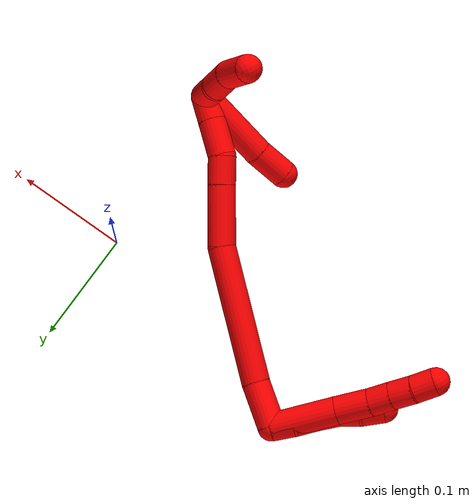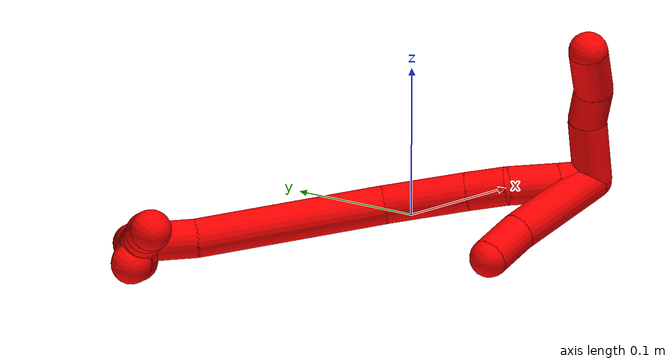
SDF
<sdf version="1.7">
 <world name="default">
  <model name="2">
   <static>0</static>
   <link name="2">
    <collision name="collision-cylinder-e_1_2_8">
     <pose>0.010659 0.009315 0.026101 -0.342784 0.367171 -0.064255</pose>
     <geometry><cylinder><radius>0.0125</radius><length>0.059385</length></cylinder></geometry>
     <surface>
      <friction><ode><mu>1.16</mu><mu2>1.16</mu2><slip1>0</slip1><slip2>0</slip2></ode></friction>
      <contact><ode><kp>1e+06</kp><kd>1</kd><max_vel>0</max_vel><min_depth>0.001</min_depth></ode></contact>
     </surface>
    </collision>
    <visual name="visual-cylinder-e_1_2_8">
     <pose>0.010659 0.009315 0.026101 -0.342784 0.367171 -0.064255</pose>
     <geometry><cylinder><radius>0.0125</radius><length>0.059385</length></cylinder></geometry>
     <material><ambient>1 0 0 1</ambient></material>
    </visual>
    <collision name="collision-cylinder-e_2_8_9">
     <pose>0.027607 0.0237 0.065172 -0.372684 0.424201 -0.081151</pose>
     <geometry><cylinder><radius>0.0125</radius><length>0.03056</length></cylinder></geometry>
     <surface>
      <friction><ode><mu>1.16</mu><mu2>1.16</mu2><slip1>0</slip1><slip2>0</slip2></ode></friction>
      <contact><ode><kp>1e+06</kp><kd>1</kd><max_vel>0</max_vel><min_depth>0.001</min_depth></ode></contact>
     </surface>
    </collision>
    <visual name="visual-cylinder-e_2_8_9">
     <pose>0.027607 0.0237 0.065172 -0.372684 0.424201 -0.081151</pose>
     <geometry><cylinder><radius>0.0125</radius><length>0.03056</length></cylinder></geometry>
     <material><ambient>1 0 0 1</ambient></material>
    </visual>
    <collision name="collision-cylinder-e_3_9_10">
     <pose>0.038675 0.03153 0.086496 -0.319046 0.49755 -0.081699</pose>
     <geometry><cylinder><radius>0.0125</radius><length>0.020024</length></cylinder></geometry>
     <surface>
      <friction><ode><mu>1.16</mu><mu2>1.16</mu2><slip1>0</slip1><slip2>0</slip2></ode></friction>
      <contact><ode><kp>1e+06</kp><kd>1</kd><max_vel>0</max_vel><min_depth>0.001</min_depth></ode></contact>
     </surface>
    </collision>
    <visual name="visual-cylinder-e_3_9_10">
     <pose>0.038675 0.03153 0.086496 -0.319046 0.49755 -0.081699</pose>
     <geometry><cylinder><radius>0.0125</radius><length>0.020024</length></cylinder></geometry>
     <material><ambient>1 0 0 1</ambient></material>
    </visual>
    <collision name="collision-cylinder-e_4_10_11">
     <pose>0.048406 0.037258 0.103019 -0.348472 0.517931 -0.093193</pose>
     <geometry><cylinder><radius>0.0125</radius><length>0.020007</length></cylinder></geometry>
     <surface>
      <friction><ode><mu>1.16</mu><mu2>1.16</mu2><slip1>0</slip1><slip2>0</slip2></ode></friction>
      <contact><ode><kp>1e+06</kp><kd>1</kd><max_vel>0</max_vel><min_depth>0.001</min_depth></ode></contact>
     </surface>
    </collision>
    <visual name="visual-cylinder-e_4_10_11">
     <pose>0.048406 0.037258 0.103019 -0.348472 0.517931 -0.093193</pose>
     <geometry><cylinder><radius>0.0125</radius><length>0.020007</length></cylinder></geometry>
     <material><ambient>1 0 0 1</ambient></material>
    </visual>
    <collision name="collision-cylinder-e_5_11_6">
     <pose>0.057647 0.042578 0.119924 -0.263081 0.442707 -0.05953</pose>
     <geometry><cylinder><radius>0.0125</radius><length>0.020024</length></cylinder></geometry>
     <surface>
      <friction><ode><mu>1.16</mu><mu2>1.16</mu2><slip1>0</slip1><slip2>0</slip2></ode></friction>
      <contact><ode><kp>1e+06</kp><kd>1</kd><max_vel>0</max_vel><min_depth>0.001</min_depth></ode></contact>
     </surface>
    </collision>
    <visual name="visual-cylinder-e_5_11_6">
     <pose>0.057647 0.042578 0.119924 -0.263081 0.442707 -0.05953</pose>
     <geometry><cylinder><radius>0.0125</radius><length>0.020024</length></cylinder></geometry>
     <material><ambient>1 0 0 1</ambient></material>
    </visual>
    <collision name="collision-cylinder-e_1_2_12">
     <pose>0.003216 0.003638 0.008742 -0.394374 0.327457 -0.065987</pose>
     <geometry><cylinder><radius>0.0125</radius><length>0.02</length></cylinder></geometry>
     <surface>
      <friction><ode><mu>1.16</mu><mu2>1.16</mu2><slip1>0</slip1><slip2>0</slip2></ode></friction>
      <contact><ode><kp>1e+06</kp><kd>1</kd><max_vel>0</max_vel><min_depth>0.001</min_depth></ode></contact>
     </surface>
    </collision>
    <visual name="visual-cylinder-e_1_2_12">
     <pose>0.003216 0.003638 0.008742 -0.394374 0.327457 -0.065987</pose>
     <geometry><cylinder><radius>0.0125</radius><length>0.02</length></cylinder></geometry>
     <material><ambient>1 0 0 1</ambient></material>
    </visual>
    <collision name="collision-cylinder-e_2_12_13">
     <pose>0.007141 0.009999 0.02708 -0.276512 0.070871 -0.009865</pose>
     <geometry><cylinder><radius>0.0125</radius><length>0.02</length></cylinder></geometry>
     <surface>
      <friction><ode><mu>1.16</mu><mu2>1.16</mu2><slip1>0</slip1><slip2>0</slip2></ode></friction>
      <contact><ode><kp>1e+06</kp><kd>1</kd><max_vel>0</max_vel><min_depth>0.001</min_depth></ode></contact>
     </surface>
    </collision>
    <visual name="visual-cylinder-e_2_12_13">
     <pose>0.007141 0.009999 0.02708 -0.276512 0.070871 -0.009865</pose>
     <geometry><cylinder><radius>0.0125</radius><length>0.02</length></cylinder></geometry>
     <material><ambient>1 0 0 1</ambient></material>
    </visual>
    <collision name="collision-cylinder-e_3_13_14">
     <pose>0.009366 0.016068 0.045976 -0.345259 0.15233 -0.026611</pose>
     <geometry><cylinder><radius>0.0125</radius><length>0.02</length></cylinder></geometry>
     <surface>
      <friction><ode><mu>1.16</mu><mu2>1.16</mu2><slip1>0</slip1><slip2>0</slip2></ode></friction>
      <contact><ode><kp>1e+06</kp><kd>1</kd><max_vel>0</max_vel><min_depth>0.001</min_depth></ode></contact>
     </surface>
    </collision>
    <visual name="visual-cylinder-e_3_13_14">
     <pose>0.009366 0.016068 0.045976 -0.345259 0.15233 -0.026611</pose>
     <geometry><cylinder><radius>0.0125</radius><length>0.02</length></cylinder></geometry>
     <material><ambient>1 0 0 1</ambient></material>
    </visual>
    <collision name="collision-cylinder-e_4_14_15">
     <pose>0.014591 0.024729 0.062893 -0.609372 0.379737 -0.120728</pose>
     <geometry><cylinder><radius>0.0125</radius><length>0.02</length></cylinder></geometry>
     <surface>
      <friction><ode><mu>1.16</mu><mu2>1.16</mu2><slip1>0</slip1><slip2>0</slip2></ode></friction>
      <contact><ode><kp>1e+06</kp><kd>1</kd><max_vel>0</max_vel><min_depth>0.001</min_depth></ode></contact>
     </surface>
    </collision>
    <visual name="visual-cylinder-e_4_14_15">
     <pose>0.014591 0.024729 0.062893 -0.609372 0.379737 -0.120728</pose>
     <geometry><cylinder><radius>0.0125</radius><length>0.02</length></cylinder></geometry>
     <material><ambient>1 0 0 1</ambient></material>
    </visual>
    <collision name="collision-cylinder-e_5_15_5">
     <pose>0.021 0.034038 0.07927 -0.427718 0.273723 -0.059803</pose>
     <geometry><cylinder><radius>0.0125</radius><length>0.02</length></cylinder></geometry>
     <surface>
      <friction><ode><mu>1.16</mu><mu2>1.16</mu2><slip1>0</slip1><slip2>0</slip2></ode></friction>
      <contact><ode><kp>1e+06</kp><kd>1</kd><max_vel>0</max_vel><min_depth>0.001</min_depth></ode></contact>
     </surface>
    </collision>
    <visual name="visual-cylinder-e_5_15_5">
     <pose>0.021 0.034038 0.07927 -0.427718 0.273723 -0.059803</pose>
     <geometry><cylinder><radius>0.0125</radius><length>0.02</length></cylinder></geometry>
     <material><ambient>1 0 0 1</ambient></material>
    </visual>
    <collision name="collision-cylinder-e_1_2_16">
     <pose>0.001582 -0.020021 0.003889 1.37895 0.077402 0.063825</pose>
     <geometry><cylinder><radius>0.0125</radius><length>0.040913</length></cylinder></geometry>
     <surface>
      <friction><ode><mu>1.16</mu><mu2>1.16</mu2><slip1>0</slip1><slip2>0</slip2></ode></friction>
      <contact><ode><kp>1e+06</kp><kd>1</kd><max_vel>0</max_vel><min_depth>0.001</min_depth></ode></contact>
     </surface>
    </collision>
    <visual name="visual-cylinder-e_1_2_16">
     <pose>0.001582 -0.020021 0.003889 1.37895 0.077402 0.063825</pose>
     <geometry><cylinder><radius>0.0125</radius><length>0.040913</length></cylinder></geometry>
     <material><ambient>1 0 0 1</ambient></material>
    </visual>
    <collision name="collision-cylinder-e_2_16_17">
     <pose>0.016634 -0.097999 0.02358 1.30461 0.220591 0.168783</pose>
     <geometry><cylinder><radius>0.0125</radius><length>0.123129</length></cylinder></geometry>
     <surface>
      <friction><ode><mu>1.16</mu><mu2>1.16</mu2><slip1>0</slip1><slip2>0</slip2></ode></friction>
      <contact><ode><kp>1e+06</kp><kd>1</kd><max_vel>0</max_vel><min_depth>0.001</min_depth></ode></contact>
     </surface>
    </collision>
    <visual name="visual-cylinder-e_2_16_17">
     <pose>0.016634 -0.097999 0.02358 1.30461 0.220591 0.168783</pose>
     <geometry><cylinder><radius>0.0125</radius><length>0.123129</length></cylinder></geometry>
     <material><ambient>1 0 0 1</ambient></material>
    </visual>
    <collision name="collision-cylinder-e_3_17_18">
     <pose>0.037847 -0.178528 0.052016 1.06056 0.290812 0.171293</pose>
     <geometry><cylinder><radius>0.0125</radius><length>0.054001</length></cylinder></geometry>
     <surface>
      <friction><ode><mu>1.16</mu><mu2>1.16</mu2><slip1>0</slip1><slip2>0</slip2></ode></friction>
      <contact><ode><kp>1e+06</kp><kd>1</kd><max_vel>0</max_vel><min_depth>0.001</min_depth></ode></contact>
     </surface>
    </collision>
    <visual name="visual-cylinder-e_3_17_18">
     <pose>0.037847 -0.178528 0.052016 1.06056 0.290812 0.171293</pose>
     <geometry><cylinder><radius>0.0125</radius><length>0.054001</length></cylinder></geometry>
     <material><ambient>1 0 0 1</ambient></material>
    </visual>
    <collision name="collision-cylinder-e_4_18_19">
     <pose>0.049105 -0.211602 0.070886 1.03481 0.280281 0.160222</pose>
     <geometry><cylinder><radius>0.0125</radius><length>0.025421</length></cylinder></geometry>
     <surface>
      <friction><ode><mu>1.16</mu><mu2>1.16</mu2><slip1>0</slip1><slip2>0</slip2></ode></friction>
      <contact><ode><kp>1e+06</kp><kd>1</kd><max_vel>0</max_vel><min_depth>0.001</min_depth></ode></contact>
     </surface>
    </collision>
    <visual name="visual-cylinder-e_4_18_19">
     <pose>0.049105 -0.211602 0.070886 1.03481 0.280281 0.160222</pose>
     <geometry><cylinder><radius>0.0125</radius><length>0.025421</length></cylinder></geometry>
     <material><ambient>1 0 0 1</ambient></material>
    </visual>
    <collision name="collision-cylinder-e_5_19_20">
     <pose>0.054301 -0.238027 0.081371 1.31014 0.101605 0.078085</pose>
     <geometry><cylinder><radius>0.0125</radius><length>0.033131</length></cylinder></geometry>
     <surface>
      <friction><ode><mu>1.16</mu><mu2>1.16</mu2><slip1>0</slip1><slip2>0</slip2></ode></friction>
      <contact><ode><kp>1e+06</kp><kd>1</kd><max_vel>0</max_vel><min_depth>0.001</min_depth></ode></contact>
     </surface>
    </collision>
    <visual name="visual-cylinder-e_5_19_20">
     <pose>0.054301 -0.238027 0.081371 1.31014 0.101605 0.078085</pose>
     <geometry><cylinder><radius>0.0125</radius><length>0.033131</length></cylinder></geometry>
     <material><ambient>1 0 0 1</ambient></material>
    </visual>
    <collision name="collision-cylinder-e_6_20_1">
     <pose>0.057364 -0.265211 0.088489 1.32119 0.118405 0.092051</pose>
     <geometry><cylinder><radius>0.0125</radius><length>0.023405</length></cylinder></geometry>
     <surface>
      <friction><ode><mu>1.16</mu><mu2>1.16</mu2><slip1>0</slip1><slip2>0</slip2></ode></friction>
      <contact><ode><kp>1e+06</kp><kd>1</kd><max_vel>0</max_vel><min_depth>0.001</min_depth></ode></contact>
     </surface>
    </collision>
    <visual name="visual-cylinder-e_6_20_1">
     <pose>0.057364 -0.265211 0.088489 1.32119 0.118405 0.092051</pose>
     <geometry><cylinder><radius>0.0125</radius><length>0.023405</length></cylinder></geometry>
     <material><ambient>1 0 0 1</ambient></material>
    </visual>
    <collision name="collision-cylinder-e_1_1_21">
     <pose>0.079316 -0.271607 0.091599 -1.52154 1.33832 -1.29066</pose>
     <geometry><cylinder><radius>0.0125</radius><length>0.042277</length></cylinder></geometry>
     <surface>
      <friction><ode><mu>1.16</mu><mu2>1.16</mu2><slip1>0</slip1><slip2>0</slip2></ode></friction>
      <contact><ode><kp>1e+06</kp><kd>1</kd><max_vel>0</max_vel><min_depth>0.001</min_depth></ode></contact>
     </surface>
    </collision>
    <visual name="visual-cylinder-e_1_1_21">
     <pose>0.079316 -0.271607 0.091599 -1.52154 1.33832 -1.29066</pose>
     <geometry><cylinder><radius>0.0125</radius><length>0.042277</length></cylinder></geometry>
     <material><ambient>1 0 0 1</ambient></material>
    </visual>
    <collision name="collision-cylinder-e_2_21_22">
     <pose>0.111723 -0.265202 0.095966 -0.35746 1.21452 -0.249752</pose>
     <geometry><cylinder><radius>0.0125</radius><length>0.025261</length></cylinder></geometry>
     <surface>
      <friction><ode><mu>1.16</mu><mu2>1.16</mu2><slip1>0</slip1><slip2>0</slip2></ode></friction>
      <contact><ode><kp>1e+06</kp><kd>1</kd><max_vel>0</max_vel><min_depth>0.001</min_depth></ode></contact>
     </surface>
    </collision>
    <visual name="visual-cylinder-e_2_21_22">
     <pose>0.111723 -0.265202 0.095966 -0.35746 1.21452 -0.249752</pose>
     <geometry><cylinder><radius>0.0125</radius><length>0.025261</length></cylinder></geometry>
     <material><ambient>1 0 0 1</ambient></material>
    </visual>
    <collision name="collision-cylinder-e_3_22_4">
     <pose>0.138001 -0.257481 0.104184 -0.985966 1.09669 -0.634164</pose>
     <geometry><cylinder><radius>0.0125</radius><length>0.032462</length></cylinder></geometry>
     <surface>
      <friction><ode><mu>1.16</mu><mu2>1.16</mu2><slip1>0</slip1><slip2>0</slip2></ode></friction>
      <contact><ode><kp>1e+06</kp><kd>1</kd><max_vel>0</max_vel><min_depth>0.001</min_depth></ode></contact>
     </surface>
    </collision>
    <visual name="visual-cylinder-e_3_22_4">
     <pose>0.138001 -0.257481 0.104184 -0.985966 1.09669 -0.634164</pose>
     <geometry><cylinder><radius>0.0125</radius><length>0.032462</length></cylinder></geometry>
     <material><ambient>1 0 0 1</ambient></material>
    </visual>
    <collision name="collision-cylinder-e_1_1_23">
     <pose>0.046997 -0.245317 0.101847 -1.24608 -0.343272 0.24782</pose>
     <geometry><cylinder><radius>0.0125</radius><length>0.069816</length></cylinder></geometry>
     <surface>
      <friction><ode><mu>1.16</mu><mu2>1.16</mu2><slip1>0</slip1><slip2>0</slip2></ode></friction>
      <contact><ode><kp>1e+06</kp><kd>1</kd><max_vel>0</max_vel><min_depth>0.001</min_depth></ode></contact>
     </surface>
    </collision>
    <visual name="visual-cylinder-e_1_1_23">
     <pose>0.046997 -0.245317 0.101847 -1.24608 -0.343272 0.24782</pose>
     <geometry><cylinder><radius>0.0125</radius><length>0.069816</length></cylinder></geometry>
     <material><ambient>1 0 0 1</ambient></material>
    </visual>
    <collision name="collision-cylinder-e_2_23_3">
     <pose>0.029977 -0.201474 0.118574 -1.11375 -0.356772 0.223578</pose>
     <geometry><cylinder><radius>0.0125</radius><length>0.030184</length></cylinder></geometry>
     <surface>
      <friction><ode><mu>1.16</mu><mu2>1.16</mu2><slip1>0</slip1><slip2>0</slip2></ode></friction>
      <contact><ode><kp>1e+06</kp><kd>1</kd><max_vel>0</max_vel><min_depth>0.001</min_depth></ode></contact>
     </surface>
    </collision>
    <visual name="visual-cylinder-e_2_23_3">
     <pose>0.029977 -0.201474 0.118574 -1.11375 -0.356772 0.223578</pose>
     <geometry><cylinder><radius>0.0125</radius><length>0.030184</length></cylinder></geometry>
     <material><ambient>1 0 0 1</ambient></material>
    </visual>
    <collision name="collision-sphere-3">
     <pose>0.024707 -0.188784 0.124815 0 -0 0</pose>
     <geometry><sphere><radius>0.0125</radius></sphere></geometry>
     <surface>
      <friction><ode><mu>1.16</mu><mu2>1.16</mu2><slip1>0</slip1><slip2>0</slip2></ode></friction>
      <contact><ode><kp>1e+06</kp><kd>1</kd><max_vel>0</max_vel><min_depth>0.001</min_depth></ode></contact>
     </surface>
    </collision>
    <visual name="visual-sphere-3">
     <pose>0.024707 -0.188784 0.124815 0 -0 0</pose>
     <geometry><sphere><radius>0.0125</radius></sphere></geometry>
     <material><ambient>1 0 0 1</ambient></material>
    </visual>
    <collision name="collision-sphere-23">
     <pose>0.035248 -0.214164 0.112334 0 -0 0</pose>
     <geometry><sphere><radius>0.0125</radius></sphere></geometry>
     <surface>
      <friction><ode><mu>1.16</mu><mu2>1.16</mu2><slip1>0</slip1><slip2>0</slip2></ode></friction>
      <contact><ode><kp>1e+06</kp><kd>1</kd><max_vel>0</max_vel><min_depth>0.001</min_depth></ode></contact>
     </surface>
    </collision>
    <visual name="visual-sphere-23">
     <pose>0.035248 -0.214164 0.112334 0 -0 0</pose>
     <geometry><sphere><radius>0.0125</radius></sphere></geometry>
     <material><ambient>1 0 0 1</ambient></material>
    </visual>
    <collision name="collision-sphere-4">
     <pose>0.152442 -0.251303 0.108275 0 -0 0</pose>
     <geometry><sphere><radius>0.0125</radius></sphere></geometry>
     <surface>
      <friction><ode><mu>1.16</mu><mu2>1.16</mu2><slip1>0</slip1><slip2>0</slip2></ode></friction>
      <contact><ode><kp>1e+06</kp><kd>1</kd><max_vel>0</max_vel><min_depth>0.001</min_depth></ode></contact>
     </surface>
    </collision>
    <visual name="visual-sphere-4">
     <pose>0.152442 -0.251303 0.108275 0 -0 0</pose>
     <geometry><sphere><radius>0.0125</radius></sphere></geometry>
     <material><ambient>1 0 0 1</ambient></material>
    </visual>
    <collision name="collision-sphere-22">
     <pose>0.123561 -0.26366 0.100093 0 -0 0</pose>
     <geometry><sphere><radius>0.0125</radius></sphere></geometry>
     <surface>
      <friction><ode><mu>1.16</mu><mu2>1.16</mu2><slip1>0</slip1><slip2>0</slip2></ode></friction>
      <contact><ode><kp>1e+06</kp><kd>1</kd><max_vel>0</max_vel><min_depth>0.001</min_depth></ode></contact>
     </surface>
    </collision>
    <visual name="visual-sphere-22">
     <pose>0.123561 -0.26366 0.100093 0 -0 0</pose>
     <geometry><sphere><radius>0.0125</radius></sphere></geometry>
     <material><ambient>1 0 0 1</ambient></material>
    </visual>
    <collision name="collision-sphere-21">
     <pose>0.099886 -0.266743 0.091839 0 -0 0</pose>
     <geometry><sphere><radius>0.0125</radius></sphere></geometry>
     <surface>
      <friction><ode><mu>1.16</mu><mu2>1.16</mu2><slip1>0</slip1><slip2>0</slip2></ode></friction>
      <contact><ode><kp>1e+06</kp><kd>1</kd><max_vel>0</max_vel><min_depth>0.001</min_depth></ode></contact>
     </surface>
    </collision>
    <visual name="visual-sphere-21">
     <pose>0.099886 -0.266743 0.091839 0 -0 0</pose>
     <geometry><sphere><radius>0.0125</radius></sphere></geometry>
     <material><ambient>1 0 0 1</ambient></material>
    </visual>
    <collision name="collision-sphere-1">
     <pose>0.058746 -0.276471 0.091359 0 -0 0</pose>
     <geometry><sphere><radius>0.0125</radius></sphere></geometry>
     <surface>
      <friction><ode><mu>1.16</mu><mu2>1.16</mu2><slip1>0</slip1><slip2>0</slip2></ode></friction>
      <contact><ode><kp>1e+06</kp><kd>1</kd><max_vel>0</max_vel><min_depth>0.001</min_depth></ode></contact>
     </surface>
    </collision>
    <visual name="visual-sphere-1">
     <pose>0.058746 -0.276471 0.091359 0 -0 0</pose>
     <geometry><sphere><radius>0.0125</radius></sphere></geometry>
     <material><ambient>1 0 0 1</ambient></material>
    </visual>
    <collision name="collision-sphere-6">
     <pose>0.061936 0.044931 0.128659 0 -0 0</pose>
     <geometry><sphere><radius>0.0125</radius></sphere></geometry>
     <surface>
      <friction><ode><mu>1.16</mu><mu2>1.16</mu2><slip1>0</slip1><slip2>0</slip2></ode></friction>
      <contact><ode><kp>1e+06</kp><kd>1</kd><max_vel>0</max_vel><min_depth>0.001</min_depth></ode></contact>
     </surface>
    </collision>
    <visual name="visual-sphere-6">
     <pose>0.061936 0.044931 0.128659 0 -0 0</pose>
     <geometry><sphere><radius>0.0125</radius></sphere></geometry>
     <material><ambient>1 0 0 1</ambient></material>
    </visual>
    <collision name="collision-sphere-11">
     <pose>0.053358 0.040226 0.111188 0 -0 0</pose>
     <geometry><sphere><radius>0.0125</radius></sphere></geometry>
     <surface>
      <friction><ode><mu>1.16</mu><mu2>1.16</mu2><slip1>0</slip1><slip2>0</slip2></ode></friction>
      <contact><ode><kp>1e+06</kp><kd>1</kd><max_vel>0</max_vel><min_depth>0.001</min_depth></ode></contact>
     </surface>
    </collision>
    <visual name="visual-sphere-11">
     <pose>0.053358 0.040226 0.111188 0 -0 0</pose>
     <geometry><sphere><radius>0.0125</radius></sphere></geometry>
     <material><ambient>1 0 0 1</ambient></material>
    </visual>
    <collision name="collision-sphere-10">
     <pose>0.043453 0.03429 0.09485 0 -0 0</pose>
     <geometry><sphere><radius>0.0125</radius></sphere></geometry>
     <surface>
      <friction><ode><mu>1.16</mu><mu2>1.16</mu2><slip1>0</slip1><slip2>0</slip2></ode></friction>
      <contact><ode><kp>1e+06</kp><kd>1</kd><max_vel>0</max_vel><min_depth>0.001</min_depth></ode></contact>
     </surface>
    </collision>
    <visual name="visual-sphere-10">
     <pose>0.043453 0.03429 0.09485 0 -0 0</pose>
     <geometry><sphere><radius>0.0125</radius></sphere></geometry>
     <material><ambient>1 0 0 1</ambient></material>
    </visual>
    <collision name="collision-sphere-9">
     <pose>0.033896 0.028771 0.078142 0 -0 0</pose>
     <geometry><sphere><radius>0.0125</radius></sphere></geometry>
     <surface>
      <friction><ode><mu>1.16</mu><mu2>1.16</mu2><slip1>0</slip1><slip2>0</slip2></ode></friction>
      <contact><ode><kp>1e+06</kp><kd>1</kd><max_vel>0</max_vel><min_depth>0.001</min_depth></ode></contact>
     </surface>
    </collision>
    <visual name="visual-sphere-9">
     <pose>0.033896 0.028771 0.078142 0 -0 0</pose>
     <geometry><sphere><radius>0.0125</radius></sphere></geometry>
     <material><ambient>1 0 0 1</ambient></material>
    </visual>
    <collision name="collision-sphere-2">
     <geometry><sphere><radius>0.0125</radius></sphere></geometry>
     <surface>
      <friction><ode><mu>1.16</mu><mu2>1.16</mu2><slip1>0</slip1><slip2>0</slip2></ode></friction>
      <contact><ode><kp>1e+06</kp><kd>1</kd><max_vel>0</max_vel><min_depth>0.001</min_depth></ode></contact>
     </surface>
    </collision>
    <visual name="visual-sphere-2">
     <geometry><sphere><radius>0.0125</radius></sphere></geometry>
     <material><ambient>1 0 0 1</ambient></material>
    </visual>
    <collision name="collision-sphere-19">
     <pose>0.052621 -0.222104 0.077124 0 -0 0</pose>
     <geometry><sphere><radius>0.0125</radius></sphere></geometry>
     <surface>
      <friction><ode><mu>1.16</mu><mu2>1.16</mu2><slip1>0</slip1><slip2>0</slip2></ode></friction>
      <contact><ode><kp>1e+06</kp><kd>1</kd><max_vel>0</max_vel><min_depth>0.001</min_depth></ode></contact>
     </surface>
    </collision>
    <visual name="visual-sphere-19">
     <pose>0.052621 -0.222104 0.077124 0 -0 0</pose>
     <geometry><sphere><radius>0.0125</radius></sphere></geometry>
     <material><ambient>1 0 0 1</ambient></material>
    </visual>
    <collision name="collision-sphere-8">
     <pose>0.021318 0.01863 0.052203 0 -0 0</pose>
     <geometry><sphere><radius>0.0125</radius></sphere></geometry>
     <surface>
      <friction><ode><mu>1.16</mu><mu2>1.16</mu2><slip1>0</slip1><slip2>0</slip2></ode></friction>
      <contact><ode><kp>1e+06</kp><kd>1</kd><max_vel>0</max_vel><min_depth>0.001</min_depth></ode></contact>
     </surface>
    </collision>
    <visual name="visual-sphere-8">
     <pose>0.021318 0.01863 0.052203 0 -0 0</pose>
     <geometry><sphere><radius>0.0125</radius></sphere></geometry>
     <material><ambient>1 0 0 1</ambient></material>
    </visual>
    <collision name="collision-sphere-12">
     <pose>0.006433 0.007276 0.017484 0 -0 0</pose>
     <geometry><sphere><radius>0.0125</radius></sphere></geometry>
     <surface>
      <friction><ode><mu>1.16</mu><mu2>1.16</mu2><slip1>0</slip1><slip2>0</slip2></ode></friction>
      <contact><ode><kp>1e+06</kp><kd>1</kd><max_vel>0</max_vel><min_depth>0.001</min_depth></ode></contact>
     </surface>
    </collision>
    <visual name="visual-sphere-12">
     <pose>0.006433 0.007276 0.017484 0 -0 0</pose>
     <geometry><sphere><radius>0.0125</radius></sphere></geometry>
     <material><ambient>1 0 0 1</ambient></material>
    </visual>
    <collision name="collision-sphere-13">
     <pose>0.007849 0.012723 0.036676 0 -0 0</pose>
     <geometry><sphere><radius>0.0125</radius></sphere></geometry>
     <surface>
      <friction><ode><mu>1.16</mu><mu2>1.16</mu2><slip1>0</slip1><slip2>0</slip2></ode></friction>
      <contact><ode><kp>1e+06</kp><kd>1</kd><max_vel>0</max_vel><min_depth>0.001</min_depth></ode></contact>
     </surface>
    </collision>
    <visual name="visual-sphere-13">
     <pose>0.007849 0.012723 0.036676 0 -0 0</pose>
     <geometry><sphere><radius>0.0125</radius></sphere></geometry>
     <material><ambient>1 0 0 1</ambient></material>
    </visual>
    <collision name="collision-sphere-14">
     <pose>0.010884 0.019413 0.055277 0 -0 0</pose>
     <geometry><sphere><radius>0.0125</radius></sphere></geometry>
     <surface>
      <friction><ode><mu>1.16</mu><mu2>1.16</mu2><slip1>0</slip1><slip2>0</slip2></ode></friction>
      <contact><ode><kp>1e+06</kp><kd>1</kd><max_vel>0</max_vel><min_depth>0.001</min_depth></ode></contact>
     </surface>
    </collision>
    <visual name="visual-sphere-14">
     <pose>0.010884 0.019413 0.055277 0 -0 0</pose>
     <geometry><sphere><radius>0.0125</radius></sphere></geometry>
     <material><ambient>1 0 0 1</ambient></material>
    </visual>
    <collision name="collision-sphere-15">
     <pose>0.018297 0.030045 0.070509 0 -0 0</pose>
     <geometry><sphere><radius>0.0125</radius></sphere></geometry>
     <surface>
      <friction><ode><mu>1.16</mu><mu2>1.16</mu2><slip1>0</slip1><slip2>0</slip2></ode></friction>
      <contact><ode><kp>1e+06</kp><kd>1</kd><max_vel>0</max_vel><min_depth>0.001</min_depth></ode></contact>
     </surface>
    </collision>
    <visual name="visual-sphere-15">
     <pose>0.018297 0.030045 0.070509 0 -0 0</pose>
     <geometry><sphere><radius>0.0125</radius></sphere></geometry>
     <material><ambient>1 0 0 1</ambient></material>
    </visual>
    <collision name="collision-sphere-5">
     <pose>0.023704 0.038032 0.08803 0 -0 0</pose>
     <geometry><sphere><radius>0.0125</radius></sphere></geometry>
     <surface>
      <friction><ode><mu>1.16</mu><mu2>1.16</mu2><slip1>0</slip1><slip2>0</slip2></ode></friction>
      <contact><ode><kp>1e+06</kp><kd>1</kd><max_vel>0</max_vel><min_depth>0.001</min_depth></ode></contact>
     </surface>
    </collision>
    <visual name="visual-sphere-5">
     <pose>0.023704 0.038032 0.08803 0 -0 0</pose>
     <geometry><sphere><radius>0.0125</radius></sphere></geometry>
     <material><ambient>1 0 0 1</ambient></material>
    </visual>
    <collision name="collision-sphere-16">
     <pose>0.003164 -0.040042 0.007778 0 -0 0</pose>
     <geometry><sphere><radius>0.0125</radius></sphere></geometry>
     <surface>
      <friction><ode><mu>1.16</mu><mu2>1.16</mu2><slip1>0</slip1><slip2>0</slip2></ode></friction>
      <contact><ode><kp>1e+06</kp><kd>1</kd><max_vel>0</max_vel><min_depth>0.001</min_depth></ode></contact>
     </surface>
    </collision>
    <visual name="visual-sphere-16">
     <pose>0.003164 -0.040042 0.007778 0 -0 0</pose>
     <geometry><sphere><radius>0.0125</radius></sphere></geometry>
     <material><ambient>1 0 0 1</ambient></material>
    </visual>
    <collision name="collision-sphere-17">
     <pose>0.030105 -0.155956 0.039383 0 -0 0</pose>
     <geometry><sphere><radius>0.0125</radius></sphere></geometry>
     <surface>
      <friction><ode><mu>1.16</mu><mu2>1.16</mu2><slip1>0</slip1><slip2>0</slip2></ode></friction>
      <contact><ode><kp>1e+06</kp><kd>1</kd><max_vel>0</max_vel><min_depth>0.001</min_depth></ode></contact>
     </surface>
    </collision>
    <visual name="visual-sphere-17">
     <pose>0.030105 -0.155956 0.039383 0 -0 0</pose>
     <geometry><sphere><radius>0.0125</radius></sphere></geometry>
     <material><ambient>1 0 0 1</ambient></material>
    </visual>
    <collision name="collision-sphere-18">
     <pose>0.045589 -0.201101 0.064648 0 -0 0</pose>
     <geometry><sphere><radius>0.0125</radius></sphere></geometry>
     <surface>
      <friction><ode><mu>1.16</mu><mu2>1.16</mu2><slip1>0</slip1><slip2>0</slip2></ode></friction>
      <contact><ode><kp>1e+06</kp><kd>1</kd><max_vel>0</max_vel><min_depth>0.001</min_depth></ode></contact>
     </surface>
    </collision>
    <visual name="visual-sphere-18">
     <pose>0.045589 -0.201101 0.064648 0 -0 0</pose>
     <geometry><sphere><radius>0.0125</radius></sphere></geometry>
     <material><ambient>1 0 0 1</ambient></material>
    </visual>
    <collision name="collision-sphere-20">
     <pose>0.055982 -0.253951 0.085619 0 -0 0</pose>
     <geometry><sphere><radius>0.0125</radius></sphere></geometry>
     <surface>
      <friction><ode><mu>1.16</mu><mu2>1.16</mu2><slip1>0</slip1><slip2>0</slip2></ode></friction>
      <contact><ode><kp>1e+06</kp><kd>1</kd><max_vel>0</max_vel><min_depth>0.001</min_depth></ode></contact>
     </surface>
    </collision>
    <visual name="visual-sphere-20">
     <pose>0.055982 -0.253951 0.085619 0 -0 0</pose>
     <geometry><sphere><radius>0.0125</radius></sphere></geometry>
     <material><ambient>1 0 0 1</ambient></material>
    </visual>
    <inertial>
     <pose>0.038491 -0.115295 0.062699 0 -0 0</pose>
     <mass>0.75</mass>
     <inertia><ixx>0.0003</ixx><ixy>0</ixy><ixz>0</ixz><iyy>0.000146</iyy><iyz>0</iyz><izz>0.000106</izz></inertia>
    </inertial>
   </link>
   <pose>-0.209078 0.055346 0.012424 2.86628 -1.42229 -1.70596</pose>
  </model>
 </world>
</sdf>
